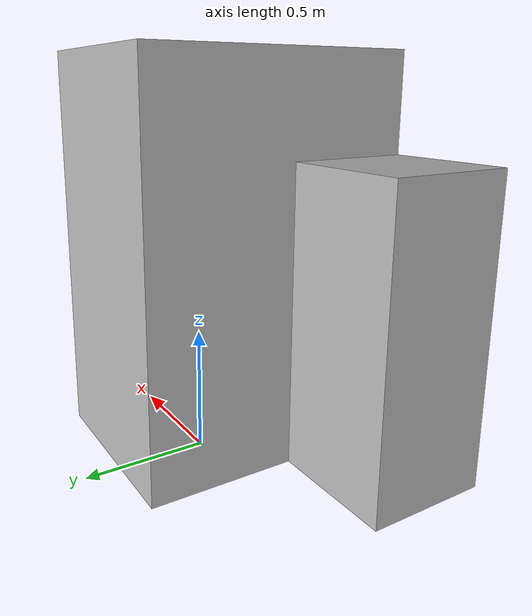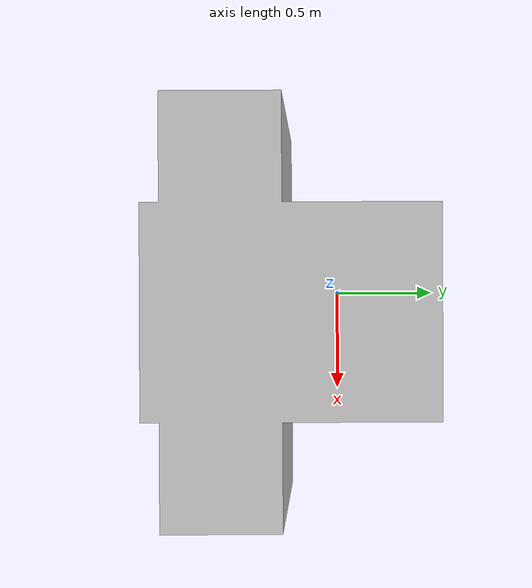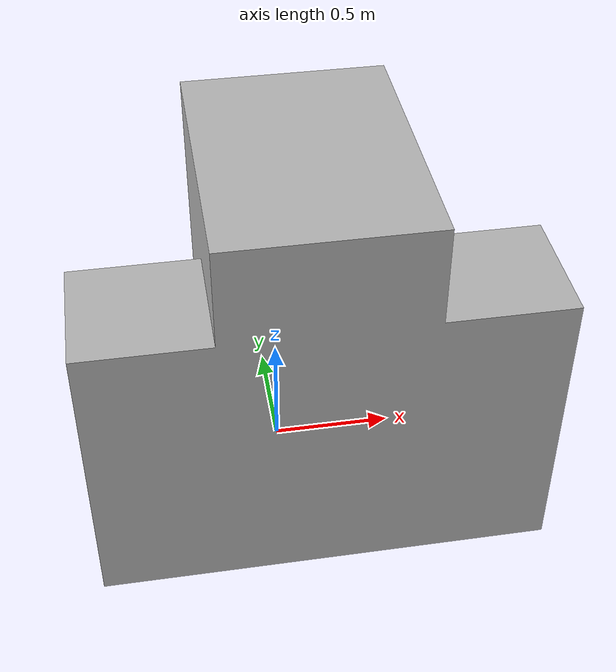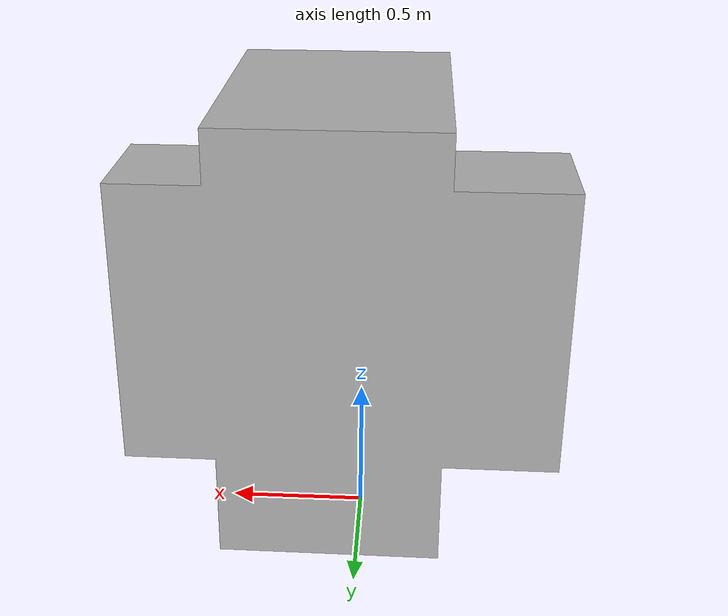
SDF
<?xml version="1.0" ?>
<sdf version="1.5">
  <model name='obs04'>
    <static>true</static>
    <link name="link">
      <collision name='collision'>
        <geometry>
          <mesh>
            <uri>model://obs04/mesh/Obs04.stl</uri>
            <scale>0.01 0.01 0.01</scale>
          </mesh>
        </geometry>
      </collision>

      <visual name='visual'>
        <geometry>
          <mesh>
            <uri>model://obs04/mesh/Obs04.stl</uri>
            <scale>0.01 0.01 0.01</scale>
          </mesh>
        </geometry>
        <material>
          <script>
            <uri>model://obs04/materials/scripts</uri>
            <uri>model://obs04/materials/textures</uri>
            <name>buildMat/Tex4</name>
          </script>
        </material>
      </visual>
    </link>
  </model>
</sdf>
